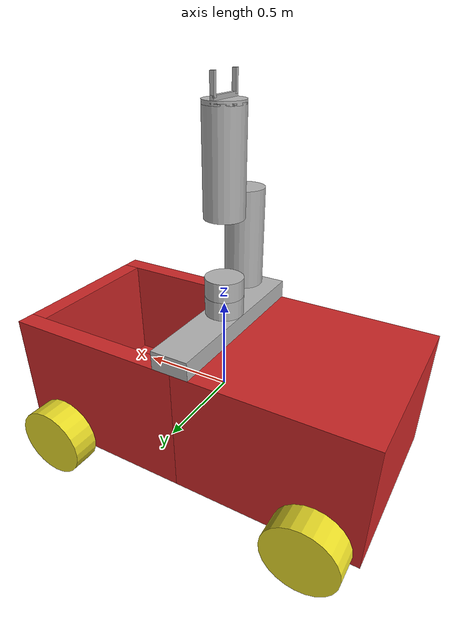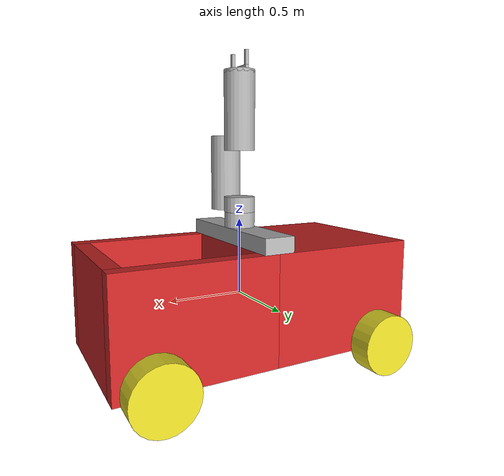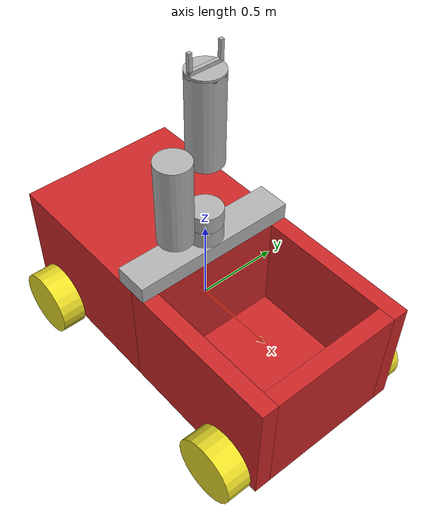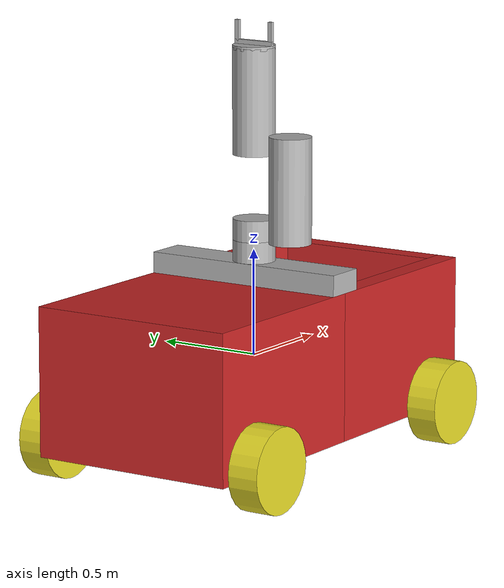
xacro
<?xml version="1.0"?>
<robot name="irwb_full" xmlns:xacro="http://www.ros.org/wiki/xacro">
  <!-- Include mobile base model -->
  <xacro:include filename="$(find irwb_robot_pkg)/urdf/irwb_body.xacro"/>
  <!-- Include arm model -->
  <xacro:include filename="$(find irwb_robot_pkg)/urdf/arm.xacro"/>

  <!-- Mount the arm onto the base with a fixed joint.
       Adjust the xyz values so that the arm is mounted at the proper height.
       In this example, we attach the arm’s base_link to the body_link. -->
  <joint name="arm_mount_joint" type="fixed">
    <parent link="body_link"/>
    <child link="base_link"/>
    <origin xyz="0 0 0.4" rpy="0 0 0"/>
  </joint>
</robot>

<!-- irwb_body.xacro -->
<!-- Description of iRWB (intelegent Runway Bot) -->
<!-- Made by Phufar                              -->
<!-- Feb 2025                                    -->
<robot name="runway_bot" xmlns:xacro="http://www.ros.org/wiki/xacro">

  <!-- Body dimensions -->
  <xacro:property name="body_link_x_dim" value="2"/>
  <xacro:property name="body_link_y_dim" value="1"/>
  <xacro:property name="body_link_z_dim" value="0.7"/>
  <xacro:property name="body_inner_x" value="0.8"/>
  <xacro:property name="body_inner_y" value="0.8"/>
  <xacro:property name="body_inner_z" value="0.6"/>

  <!-- Wheel dimensions -->
  <xacro:property name="wheel_link_radius" value="0.2"/>
  <xacro:property name="wheel_link_length" value="0.15"/>
  <xacro:property name="wheel_link_z_location" value="-0.3"/>

  <!-- Material density -->
  <xacro:property name="body_density" value="2710"/>
  <xacro:property name="wheel_density" value="1500"/>

  <!-- Pi const -->
  <xacro:property name="pi_const" value="3.141592652589"/>

  <!-- Robot body and wheel mass -->
  <xacro:property name="body_mass" value="${body_density * body_link_x_dim * body_link_y_dim * body_link_z_dim}"/>
  <xacro:property name="wheel_mass" value="${
   wheel_density * pi_const * wheel_link_radius * wheel_link_radius * wheel_link_length}"/>

  <!-- Moment of inertia of the wheel -->
  <xacro:property name="Iz_wheel" value="${0.5 * wheel_mass * wheel_link_radius * wheel_link_radius}"/>
  <xacro:property name="I_wheel" value="${
   (1.0/12.0) * wheel_mass * wheel_link_radius * wheel_link_radius + wheel_link_length * wheel_link_length}"/>

  <!-- macro of the complete inertial section of wheel -->
  <xacro:macro name="inertia_wheel">
    <inertial>
      <origin rpy="0 0 0" xyz="0 0 0"/>
      <mass value="${wheel_mass}"/>
      <inertia ixx="${I_wheel}" ixy="0.0" ixz="0.0" iyy="${I_wheel}" iyz="0.0" izz="${Iz_wheel}"/>
    </inertial>
  </xacro:macro>

  <!-- Import saved gazebo settings next time we run -->
  <xacro:include filename="$(find irwb_robot_pkg)/urdf/robot.gazebo"/>

  <!--# Define all Links and Joints here #-->

  <!-- Mandatory "dummy" link and joint -->
  <link name="dummy"></link>
  <joint name="dummy_joint" type="fixed">
    <parent link="dummy"/>
    <child link="body_link"/>
  </joint>

  <!--# body_link with hole in the front #-->

  <link name="body_link">
    <visual>
      <origin rpy="0 0 0" xyz="${-1 * body_link_x_dim / 4} 0 0"/>
      <geometry>
        <box size="${body_link_x_dim / 2} ${body_link_y_dim} ${body_link_z_dim}"/>       <!-- Solid back part -->
      </geometry>
    </visual>

    <visual>
      <origin rpy="0 0 0" xyz="${(body_link_x_dim/2 - body_inner_x)/4.0} 0 0"/>       <!-- Shaded area 1 -->
      <geometry>
        <box size="0.1 ${body_inner_y} ${body_link_z_dim}"/>
      </geometry>
    </visual>

    <visual>
      <origin rpy="0 0 0" xyz="${(body_link_x_dim/2 - body_inner_x)/4 + 0.9} 0 0"/>  <!-- Shaded area 2 -->
      <geometry>
        <box size="0.1 ${body_inner_y} ${body_link_z_dim}"/>
      </geometry>
    </visual>

    <visual>
      <origin rpy="0 0 0" xyz="${body_link_x_dim / 4} ${(body_link_y_dim - 0.1)/ 2} 0"/>  <!-- Unshaded area 1 -->
      <geometry>
        <box size="${body_inner_x + 0.2} 0.1 ${body_link_z_dim}"/>
      </geometry>
    </visual>

    <visual>
      <origin rpy="0 0 0" xyz="${body_link_x_dim / 4} ${-1 * (body_link_y_dim - 0.1)/ 2} 0"/> <!-- Unshaded area 2 -->
      <geometry>
        <box size="${body_inner_x + 0.2} 0.1 ${body_link_z_dim}"/>
      </geometry>
    </visual>

    <visual>
      <origin rpy="0 0 0" xyz="${body_link_x_dim / 4} 0 ${-1 * (body_link_z_dim - 0.1)/2}"/> <!-- Base of hole -->
      <geometry>
        <box size="${body_inner_x} ${body_inner_y} 0.1"/>
      </geometry>
    </visual>

    <collision>
      <origin rpy="0 0 0" xyz="${-1 * body_link_x_dim / 4} 0 0"/>
      <geometry>
        <box size="${body_link_x_dim / 2} ${body_link_y_dim} ${body_link_z_dim}"/>
      </geometry>
    </collision>

    <collision>
      <origin rpy="0 0 0" xyz="${(body_link_x_dim/2 - body_inner_x)/4.0} 0 0"/>
      <geometry>
        <box size="0.1 ${body_inner_y} ${body_link_z_dim}"/>
      </geometry>
    </collision>

    <collision>
      <origin rpy="0 0 0" xyz="${(body_link_x_dim/2 - body_inner_x)/4 + 0.9} 0 0"/>
      <geometry>
        <box size="0.1 ${body_inner_y} ${body_link_z_dim}"/>
      </geometry>
    </collision>

    <collision>
      <origin rpy="0 0 0" xyz="${body_link_x_dim / 4} ${(body_link_y_dim - 0.1)/ 2} 0"/>
      <geometry>
        <box size="${body_inner_x + 0.2} 0.1 ${body_link_z_dim}"/>
      </geometry>
    </collision>

    <collision>
      <origin rpy="0 0 0" xyz="${body_link_x_dim / 4} ${-1 * (body_link_y_dim - 0.1)/ 2} 0"/>
      <geometry>
        <box size="${body_inner_x + 0.2} 0.1 ${body_link_z_dim}"/>
      </geometry>
    </collision>

    <collision>
      <origin rpy="0 0 0" xyz="${body_link_x_dim / 4} 0 ${-1 * (body_link_z_dim - 0.1)/2}"/>
      <geometry>
        <box size="${body_inner_x} ${body_inner_y} 0.1"/>
      </geometry>
    </collision>

    <inertial>
      <origin rpy="0 0 0" xyz="0 0 0"/>
      <mass value="${body_mass}"/>
      <inertia
      ixx="${(1.0/12.0) * body_mass * (body_link_y_dim * body_link_y_dim + body_link_z_dim * body_link_z_dim)}"
      ixy="0"
      ixz="0"
      iyy="${(1.0/12.0) * body_mass * (body_link_x_dim * body_link_x_dim + body_link_z_dim * body_link_z_dim)}"
      iyz="0"
      izz="${(1.0/12.0) * body_mass * (body_link_x_dim * body_link_x_dim + body_link_y_dim * body_link_y_dim)}"
      />
    </inertial>
  </link>

  <!--#         end of body_link         #-->

 <!--# Joint from iRWB to wheel 1 #-->
 <joint name="wheel1_joint" type="continuous">
  <parent link="body_link"/>
  <child link="wheel1_link"/>
  <origin rpy="0 0 0" xyz="
   ${-1 * (body_link_x_dim/2 - 1.2 * wheel_link_radius)}
   ${-1 * (body_link_y_dim/2 + wheel_link_length/2)}
   ${wheel_link_z_location}"/>
  <axis xyz="0 1 0"/>
  <limit effort="1000" velocity="1000"/>
  <dynamics damping="1.0" friction="1.0"/>
 </joint>

  <!--### back right wheel1 ###-->
  <link name="wheel1_link">
    <visual>
      <origin rpy="1.5708 0 0" xyz="0 0 0"/>
      <geometry>
        <cylinder length="${wheel_link_length}" radius="${wheel_link_radius}"/>
      </geometry>
    </visual>

    <collision>
      <origin rpy="1.5708 0 0" xyz="0 0 0"/>
      <geometry>
        <cylinder length="${wheel_link_length}" radius="${wheel_link_radius}"/>
      </geometry>
    </collision>

    <xacro:inertia_wheel/>
  </link>

  <!--# Joint from iRWB to wheel 2 #-->
  <joint name="wheel2_joint" type="continuous">
    <parent link="body_link"/>
    <child link="wheel2_link"/>
    <origin rpy="0 0 0" xyz="
     ${-1 * (body_link_x_dim/2 - 1.2 * wheel_link_radius)}
     ${1 * (body_link_y_dim/2 + wheel_link_length/2)}
     ${wheel_link_z_location}"/>
    <axis xyz="0 1 0"/>
    <limit effort="1000" velocity="1000"/>
    <dynamics damping="1.0" friction="1.0"/>
  </joint>

  <!--### back left wheel2 ###-->
  <link name="wheel2_link">
    <visual>
      <origin rpy="1.5708 0 0" xyz="0 0 0"/>
      <geometry>
        <cylinder length="${wheel_link_length}" radius="${wheel_link_radius}"/>
      </geometry>
    </visual>

    <collision>
      <origin rpy="1.5708 0 0" xyz="0 0 0"/>
      <geometry>
        <cylinder length="${wheel_link_length}" radius="${wheel_link_radius}"/>
      </geometry>
    </collision>

    <xacro:inertia_wheel/>
  </link>

   <!--# Joint from iRWB to wheel 3 #-->
  <joint name="wheel3_joint" type="continuous">
    <parent link="body_link"/>
    <child link="wheel3_link"/>
    <origin rpy="0 0 0" xyz="
     ${1 * (body_link_x_dim/2 - 1.2 * wheel_link_radius)}
     ${-1 * (body_link_y_dim/2 + wheel_link_length/2)}
     ${wheel_link_z_location}"/>
    <axis xyz="0 1 0"/>
    <limit effort="1000" velocity="1000"/>
    <dynamics damping="1.0" friction="1.0"/>
  </joint>

  <!--### front right wheel3 ###-->
  <link name="wheel3_link">
    <visual>
      <origin rpy="1.5708 0 0" xyz="0 0 0"/>
      <geometry>
        <cylinder length="${wheel_link_length}" radius="${wheel_link_radius}"/>
      </geometry>
    </visual>

    <collision>
      <origin rpy="1.5708 0 0" xyz="0 0 0"/>
      <geometry>
        <cylinder length="${wheel_link_length}" radius="${wheel_link_radius}"/>
      </geometry>
    </collision>

    <xacro:inertia_wheel/>
  </link>

   <!--# Joint from iRWB to wheel 4 #-->
  <joint name="wheel4_joint" type="continuous">
    <parent link="body_link"/>
    <child link="wheel4_link"/>
    <origin rpy="0 0 0" xyz="
     ${1 * (body_link_x_dim/2 - 1.2 * wheel_link_radius)}
     ${1 * (body_link_y_dim/2 + wheel_link_length/2)}
     ${wheel_link_z_location}"/>
    <axis xyz="0 1 0"/>
    <limit effort="1000" velocity="1000"/>
    <dynamics damping="1.0" friction="1.0"/>
  </joint>

  <!--### front left wheel4 ###-->
  <link name="wheel4_link">
    <visual>
      <origin rpy="1.5708 0 0" xyz="0 0 0"/>
      <geometry>
        <cylinder length="${wheel_link_length}" radius="${wheel_link_radius}"/>
      </geometry>
    </visual>

    <collision>
      <origin rpy="1.5708 0 0" xyz="0 0 0"/>
      <geometry>
        <cylinder length="${wheel_link_length}" radius="${wheel_link_radius}"/>
      </geometry>
    </collision>

    <xacro:inertia_wheel/>
  </link>

</robot>

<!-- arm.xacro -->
<robot name="arm_robot" xmlns:xacro="http://www.ros.org/wiki/xacro">

  <!-- Constants -->
  <xacro:property name="density" value="2710"/> <!-- Aluminum density kg/m³ -->
  <xacro:property name="pi" value="3.1415926535897931"/>

  <!-- Materials -->
  <material name="aluminum">
    <color rgba="0.7 0.7 0.7 1"/>
  </material>
  <material name="gripper_color">
    <color rgba="0.9 0.9 0.9 1"/>
  </material>

  <!-- Generic Cylinder Macro -->
  <xacro:macro name="cylinder_link" params="name radius length origin_xyz origin_rpy">
    <link name="${name}">
      <xacro:property name="mass" value="${density * pi * radius*radius * length}"/>

      <visual>
        <origin rpy="${origin_rpy}" xyz="${origin_xyz}"/>
        <geometry>
          <cylinder radius="${radius}" length="${length}"/>
        </geometry>
        <material name="aluminum"/>
      </visual>

      <collision>
        <origin rpy="${origin_rpy}" xyz="${origin_xyz}"/>
        <geometry>
          <cylinder radius="${radius}" length="${length}"/>
        </geometry>
      </collision>

      <inertial>
        <origin rpy="${origin_rpy}" xyz="${origin_xyz}"/>
        <mass value="${mass}"/>
        <inertia
          ixx="${(mass/12) * (3*radius*radius + length*length)}"
          ixy="0"
          ixz="0"
          iyy="${(mass/12) * (3*radius*radius + length*length)}"
          iyz="0"
          izz="${0.5 * mass * radius*radius}"/>
      </inertial>
    </link>
  </xacro:macro>

  <!-- Generic Box Macro -->
  <xacro:macro name="box_link" params="name size_x size_y size_z origin_xyz origin_rpy">
    <link name="${name}">
      <xacro:property name="mass" value="${density * size_x * size_y * size_z}"/>

      <visual>
        <origin rpy="${origin_rpy}" xyz="${origin_xyz}"/>
        <geometry>
          <box size="${size_x} ${size_y} ${size_z}"/>
        </geometry>
        <material name="aluminum"/>
      </visual>

      <collision>
        <origin rpy="${origin_rpy}" xyz="${origin_xyz}"/>
        <geometry>
          <box size="${size_x} ${size_y} ${size_z}"/>
        </geometry>
      </collision>

      <inertial>
        <origin rpy="${origin_rpy}" xxyz="${origin_xyz}"/>
        <mass value="${mass}"/>
        <inertia
          ixx="${(mass/12) * (size_y*size_y + size_z*size_z)}"
          ixy="0"
          ixz="0"
          iyy="${(mass/12) * (size_x*size_x + size_z*size_z)}"
          iyz="0"
          izz="${(mass/12) * (size_x*size_x + size_y*size_y)}"/>
      </inertial>
    </link>
  </xacro:macro>

  <!-- Arm Link Components -->
  <xacro:box_link name="base_link"
    size_x="0.2" size_y="1" size_z="0.1"
    origin_xyz="0 0 0" origin_rpy="0 0 0"/>

  <xacro:cylinder_link name="arm1_p_link"
    radius="0.1" length="0.1"
    origin_xyz="0 0 0" origin_rpy="0 0 0"/>

  <xacro:cylinder_link name="arm1_r_link"
    radius="0.1" length="0.1"
    origin_xyz="0 0 0" origin_rpy="0 0 0"/>

  <xacro:cylinder_link name="arm2_link"
    radius="0.1" length="0.5"
    origin_xyz="0 0 ${(0.5-0.1)/2}" origin_rpy="0 0 0"/>

  <xacro:cylinder_link name="arm3_link"
    radius="0.1" length="0.5"
    origin_xyz="0 0 ${(0.5-0.1)/2}" origin_rpy="0 0 0"/>

  <xacro:cylinder_link name="arm4_link"
    radius="0.08" length="0.5"
    origin_xyz="0 0 ${(0.5-0.1)/2}" origin_rpy="0 0 0"/>

  <xacro:cylinder_link name="arm5_link"
    radius="0.1" length="0.02"
    origin_xyz="0 0 0" origin_rpy="0 0 0"/>

  <xacro:box_link name="arm6_link"
    size_x="0.02" size_y="0.2" size_z="0.02"
    origin_xyz="0 0 0" origin_rpy="0 0 0"/>

  <!-- Arm Joints -->

  <joint name="arm1_p_joint" type="prismatic">
    <parent link="base_link"/>
    <child link="arm1_p_link"/>
    <origin rpy="0 0 0" xyz="0 0 0.1"/>
    <axis xyz="0 1 0"/>
    <limit lower="-0.4" upper="0.4" effort="100" velocity="0.1"/>
  </joint>

  <joint name="arm1_r_joint" type="revolute">
    <parent link="arm1_p_link"/>
    <child link="arm1_r_link"/>
    <origin rpy="0 0 0" xyz="0 0 0.1"/>
    <axis xyz="0 0 1"/>
    <limit lower="-1.57" upper="1.57" effort="100" velocity="0.1"/>
  </joint>

  <joint name="arm2_joint" type="revolute">
    <parent link="arm1_r_link"/>
    <child link="arm2_link"/>
    <origin rpy="0 0 0" xyz="0 -0.2 -0"/>
    <axis xyz="0 1 0"/>
    <limit lower="-1.68" upper="2.01" effort="100" velocity="0.1"/>
  </joint>

  <joint name="arm3_joint" type="revolute">
    <parent link="arm2_link"/>
    <child link="arm3_link"/>
    <origin rpy="0 0 0" xyz="0 0.2 0.4"/>
    <axis xyz="0 1 0"/>
    <limit lower="-2.80" upper="2.80" effort="100" velocity="0.1"/>
  </joint>

  <joint name="arm4_joint" type="prismatic">
    <parent link="arm3_link"/>
    <child link="arm4_link"/>
    <origin rpy="0 0 0" xyz="0 0 0"/>
    <axis xyz="0 0 1"/>
    <limit lower="0" upper="0.5" effort="100" velocity="0.1"/>
  </joint>

  <joint name="arm5_joint" type="revolute">
    <parent link="arm4_link"/>
    <child link="arm5_link"/>
    <origin rpy="0 0 0" xyz="0 0 0.45"/>
    <axis xyz="0 0 1"/>
    <limit lower="-2.80" upper="2.80" effort="100" velocity="0.1"/>
  </joint>

  <joint name="arm6_joint" type="fixed">
    <parent link="arm5_link"/>
    <child link="arm6_link"/>
    <origin rpy="0 0 0" xyz="0 0 0.02"/>
  </joint>

  <!-- Gripper Components -->

  <xacro:box_link name="gripper_left"
    size_x="0.02" size_y="0.02" size_z="0.1"
    origin_xyz="0 0 0" origin_rpy="0 0 0"/>

  <xacro:box_link name="gripper_right"
    size_x="0.02" size_y="0.02" size_z="0.1"
    origin_xyz="0 0 0" origin_rpy="0 0 0"/>

  <joint name="gripper_joint1" type="prismatic">
    <parent link="arm6_link"/>
    <child link="gripper_left"/>
    <origin rpy="0 0 0" xyz="0 0.09 0.05"/>
    <axis xyz="0 1 0"/>
    <limit lower="-0.08" upper="0" effort="100" velocity="0.1"/>
  </joint>

  <joint name="gripper_joint2" type="prismatic">
    <parent link="arm6_link"/>
    <child link="gripper_right"/>
    <origin rpy="0 0 0" xyz="0 -0.09 0.05"/>
    <axis xyz="0 1 0"/>
    <limit lower="0" upper="0.08" effort="100" velocity="0.1"/>
  </joint>

  <!-- Transmission Import -->
  <xacro:include filename="$(find irwb_robot_pkg)/urdf/transmissions.xacro"/>

</robot>
